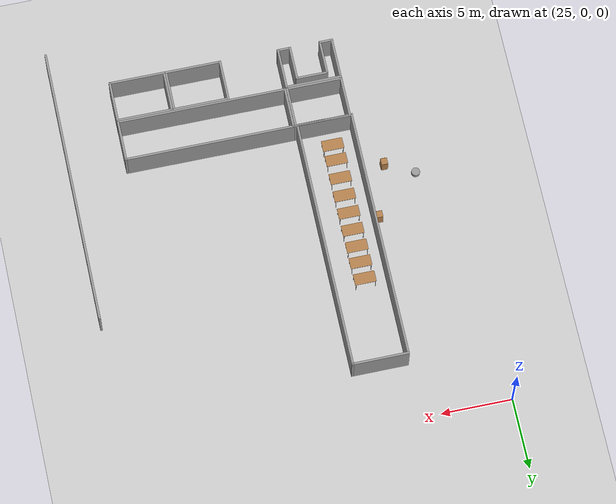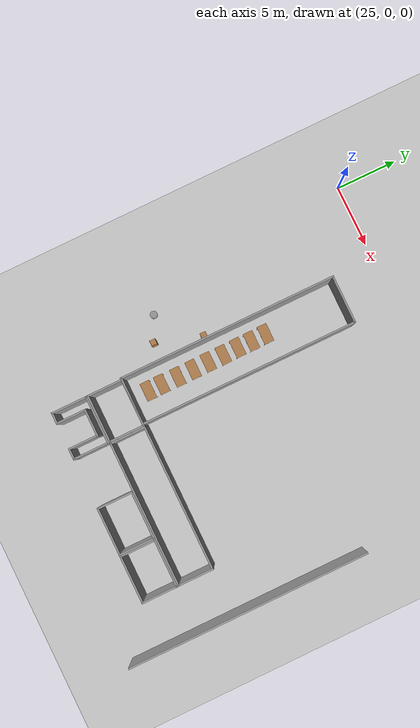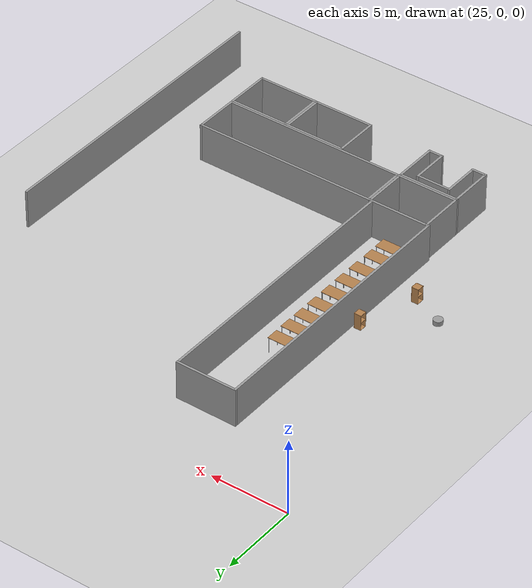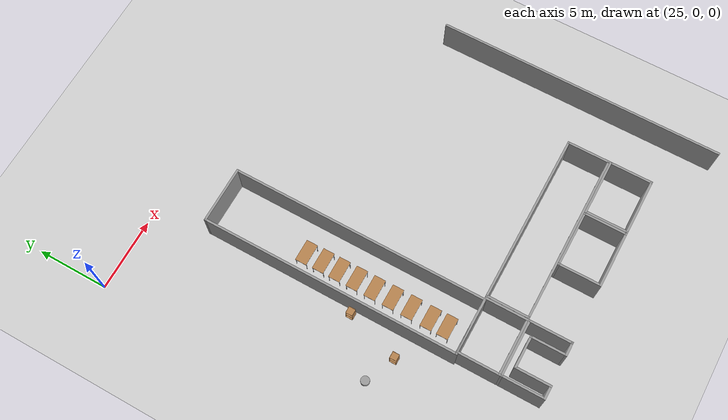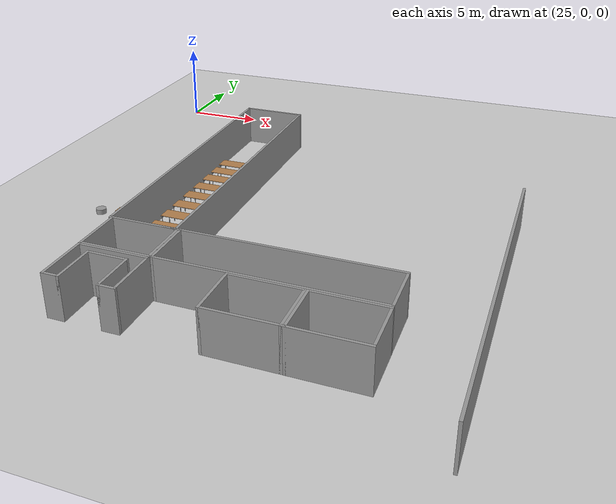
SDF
<sdf version="1.6">
 <world name="default">
  <model name="ground_plane">
   <static>1</static>
   <link name="link">
    <collision name="collision">
     <geometry><plane><normal>0 0 1</normal><size>105 105</size></plane></geometry>
     <surface>
      <contact><collide_bitmask>65535</collide_bitmask></contact>
      <friction><ode><mu>100</mu><mu2>50</mu2></ode></friction>
     </surface>
    </collision>
    <visual name="visual">
     <cast_shadows>0</cast_shadows>
     <geometry><plane><normal>0 0 1</normal><size>105 105</size></plane></geometry>
     <material>
      <script><uri>file://media/materials/scripts/gazebo.material</uri><name>Gazebo/Grey</name></script>
     </material>
    </visual>
   </link>
  </model>
  <model name="wall_v20m_3">
   <pose>51.4198 -20.719 0 0 -0 0</pose>
   <link name="Wall_35">
    <collision name="Wall_35_Collision">
     <geometry><box><size>20 0.15 2.5</size></box></geometry>
     <pose>0 0 1.25 0 -0 0</pose>
    </collision>
    <visual name="Wall_35_Visual">
     <pose>0 0 1.25 0 -0 0</pose>
     <geometry><box><size>20 0.15 2.5</size></box></geometry>
     <material>
      <script><uri>file://media/materials/scripts/gazebo.material</uri><name>Gazebo/Grey</name></script>
      <ambient>1 1 1 1</ambient>
     </material>
     <meta><layer>0</layer></meta>
    </visual>
    <pose>0 -0 0 0 -0 -1.5708</pose>
   </link>
   <static>1</static>
  </model>
  <model name="base3x4_25">
   <pose>33.5003 -23.2296 0 0 -0 0</pose>
   <link name="Wall_18">
    <collision name="Wall_18_Collision">
     <geometry><box><size>3 0.15 2.5</size></box></geometry>
     <pose>0 0 1.25 0 -0 0</pose>
    </collision>
    <visual name="Wall_18_Visual">
     <pose>0 0 1.25 0 -0 0</pose>
     <geometry><box><size>3 0.15 2.5</size></box></geometry>
     <material>
      <script><uri>file://media/materials/scripts/gazebo.material</uri><name>Gazebo/Grey</name></script>
      <ambient>1 1 1 1</ambient>
     </material>
     <meta><layer>0</layer></meta>
    </visual>
    <pose>-1.925 -0 0 0 -0 -1.5708</pose>
   </link>
   <link name="Wall_19">
    <collision name="Wall_19_Collision">
     <geometry><box><size>4 0.15 2.5</size></box></geometry>
     <pose>0 0 1.25 0 -0 0</pose>
    </collision>
    <visual name="Wall_19_Visual">
     <pose>0 0 1.25 0 -0 0</pose>
     <geometry><box><size>4 0.15 2.5</size></box></geometry>
     <material>
      <script><uri>file://media/materials/scripts/gazebo.material</uri><name>Gazebo/Grey</name></script>
      <ambient>1 1 1 1</ambient>
     </material>
     <meta><layer>0</layer></meta>
    </visual>
    <pose>-0 -1.425 0 0 -0 0</pose>
   </link>
   <link name="Wall_20">
    <collision name="Wall_20_Collision">
     <geometry><box><size>3 0.15 2.5</size></box></geometry>
     <pose>0 0 1.25 0 -0 0</pose>
    </collision>
    <visual name="Wall_20_Visual">
     <pose>0 0 1.25 0 -0 0</pose>
     <geometry><box><size>3 0.15 2.5</size></box></geometry>
     <material>
      <script><uri>file://media/materials/scripts/gazebo.material</uri><name>Gazebo/Grey</name></script>
      <ambient>1 1 1 1</ambient>
     </material>
     <meta><layer>0</layer></meta>
    </visual>
    <pose>1.925 -0 0 0 -0 1.5708</pose>
   </link>
   <link name="Wall_21">
    <collision name="Wall_21_Collision">
     <geometry><box><size>4 0.15 2.5</size></box></geometry>
     <pose>0 0 1.25 0 -0 0</pose>
    </collision>
    <visual name="Wall_21_Visual">
     <pose>0 0 1.25 0 -0 0</pose>
     <geometry><box><size>4 0.15 2.5</size></box></geometry>
     <material>
      <script><uri>file://media/materials/scripts/gazebo.material</uri><name>Gazebo/Grey</name></script>
      <ambient>1 1 1 1</ambient>
     </material>
     <meta><layer>0</layer></meta>
    </visual>
    <pose>-0 1.425 0 0 -0 3.14159</pose>
   </link>
   <static>1</static>
  </model>
  <model name="base3x12">
   <pose>41.5026 -23.2294 0 0 -0 0</pose>
   <link name="Wall_0">
    <collision name="Wall_0_Collision">
     <geometry><box><size>3 0.15 2.5</size></box></geometry>
     <pose>0 0 1.25 0 -0 0</pose>
    </collision>
    <visual name="Wall_0_Visual">
     <pose>0 0 1.25 0 -0 0</pose>
     <geometry><box><size>3 0.15 2.5</size></box></geometry>
     <material>
      <script><uri>file://media/materials/scripts/gazebo.material</uri><name>Gazebo/Grey</name></script>
      <ambient>1 1 1 1</ambient>
     </material>
     <meta><layer>0</layer></meta>
    </visual>
    <pose>-5.925 0 0 0 -0 -1.5708</pose>
   </link>
   <link name="Wall_1">
    <collision name="Wall_1_Collision">
     <geometry><box><size>12 0.15 2.5</size></box></geometry>
     <pose>0 0 1.25 0 -0 0</pose>
    </collision>
    <visual name="Wall_1_Visual">
     <pose>0 0 1.25 0 -0 0</pose>
     <geometry><box><size>12 0.15 2.5</size></box></geometry>
     <material>
      <script><uri>file://media/materials/scripts/gazebo.material</uri><name>Gazebo/Grey</name></script>
      <ambient>1 1 1 1</ambient>
     </material>
     <meta><layer>0</layer></meta>
    </visual>
    <pose>0 -1.425 0 0 -0 0</pose>
   </link>
   <link name="Wall_2">
    <collision name="Wall_2_Collision">
     <geometry><box><size>3 0.15 2.5</size></box></geometry>
     <pose>0 0 1.25 0 -0 0</pose>
    </collision>
    <visual name="Wall_2_Visual">
     <pose>0 0 1.25 0 -0 0</pose>
     <geometry><box><size>3 0.15 2.5</size></box></geometry>
     <material>
      <script><uri>file://media/materials/scripts/gazebo.material</uri><name>Gazebo/Grey</name></script>
      <ambient>1 1 1 1</ambient>
     </material>
     <meta><layer>0</layer></meta>
    </visual>
    <pose>5.925 0 0 0 -0 1.5708</pose>
   </link>
   <link name="Wall_3">
    <collision name="Wall_3_Collision">
     <geometry><box><size>12 0.15 2.5</size></box></geometry>
     <pose>0 0 1.25 0 -0 0</pose>
    </collision>
    <visual name="Wall_3_Visual">
     <pose>0 0 1.25 0 -0 0</pose>
     <geometry><box><size>12 0.15 2.5</size></box></geometry>
     <material>
      <script><uri>file://media/materials/scripts/gazebo.material</uri><name>Gazebo/Grey</name></script>
      <ambient>1 1 1 1</ambient>
     </material>
     <meta><layer>0</layer></meta>
    </visual>
    <pose>0 1.425 0 0 -0 3.14159</pose>
   </link>
   <static>1</static>
  </model>
  <model name="base18x4_5">
   <pose>33.3746 -12.8976 0 0 -0 0</pose>
   <link name="Wall_6">
    <collision name="Wall_6_Collision">
     <geometry><box><size>18 0.15 2.5</size></box></geometry>
     <pose>0 0 1.25 0 -0 0</pose>
    </collision>
    <visual name="Wall_6_Visual">
     <pose>0 0 1.25 0 -0 0</pose>
     <geometry><box><size>18 0.15 2.5</size></box></geometry>
     <material>
      <script><uri>file://media/materials/scripts/gazebo.material</uri><name>Gazebo/Grey</name></script>
      <ambient>1 1 1 1</ambient>
     </material>
     <meta><layer>0</layer></meta>
    </visual>
    <pose>-1.925 0 0 0 -0 -1.5708</pose>
   </link>
   <link name="Wall_7">
    <collision name="Wall_7_Collision">
     <geometry><box><size>4 0.15 2.5</size></box></geometry>
     <pose>0 0 1.25 0 -0 0</pose>
    </collision>
    <visual name="Wall_7_Visual">
     <pose>0 0 1.25 0 -0 0</pose>
     <geometry><box><size>4 0.15 2.5</size></box></geometry>
     <material>
      <script><uri>file://media/materials/scripts/gazebo.material</uri><name>Gazebo/Grey</name></script>
      <ambient>1 1 1 1</ambient>
     </material>
     <meta><layer>0</layer></meta>
    </visual>
    <pose>0 -8.925 0 0 -0 0</pose>
   </link>
   <link name="Wall_8">
    <collision name="Wall_8_Collision">
     <geometry><box><size>18 0.15 2.5</size></box></geometry>
     <pose>0 0 1.25 0 -0 0</pose>
    </collision>
    <visual name="Wall_8_Visual">
     <pose>0 0 1.25 0 -0 0</pose>
     <geometry><box><size>18 0.15 2.5</size></box></geometry>
     <material>
      <script><uri>file://media/materials/scripts/gazebo.material</uri><name>Gazebo/Grey</name></script>
      <ambient>1 1 1 1</ambient>
     </material>
     <meta><layer>0</layer></meta>
    </visual>
    <pose>1.925 0 0 0 -0 1.5708</pose>
   </link>
   <link name="Wall_9">
    <collision name="Wall_9_Collision">
     <geometry><box><size>4 0.15 2.5</size></box></geometry>
     <pose>0 0 1.25 0 -0 0</pose>
    </collision>
    <visual name="Wall_9_Visual">
     <pose>0 0 1.25 0 -0 0</pose>
     <geometry><box><size>4 0.15 2.5</size></box></geometry>
     <material>
      <script><uri>file://media/materials/scripts/gazebo.material</uri><name>Gazebo/Grey</name></script>
      <ambient>1 1 1 1</ambient>
     </material>
     <meta><layer>0</layer></meta>
    </visual>
    <pose>0 8.925 0 0 -0 3.14159</pose>
   </link>
   <static>1</static>
  </model>
  <model name="table">
   <static>1</static>
   <link name="link">
    <collision name="surface">
     <pose>0 0 1 0 -0 0</pose>
     <geometry><box><size>1.5 0.8 0.03</size></box></geometry>
     <surface><friction><ode><mu>0.6</mu><mu2>0.6</mu2></ode></friction></surface>
    </collision>
    <visual name="visual1">
     <pose>0 0 1 0 -0 0</pose>
     <geometry><box><size>1.5 0.8 0.03</size></box></geometry>
     <material>
      <script><uri>file://media/materials/scripts/gazebo.material</uri><name>Gazebo/Wood</name></script>
     </material>
    </visual>
    <collision name="front_left_leg">
     <pose>0.68 0.38 0.5 0 -0 0</pose>
     <geometry><cylinder><radius>0.02</radius><length>1</length></cylinder></geometry>
    </collision>
    <visual name="front_left_leg">
     <pose>0.68 0.38 0.5 0 -0 0</pose>
     <geometry><cylinder><radius>0.02</radius><length>1</length></cylinder></geometry>
     <material>
      <script><uri>file://media/materials/scripts/gazebo.material</uri><name>Gazebo/Grey</name></script>
     </material>
    </visual>
    <collision name="front_right_leg">
     <pose>0.68 -0.38 0.5 0 -0 0</pose>
     <geometry><cylinder><radius>0.02</radius><length>1</length></cylinder></geometry>
    </collision>
    <visual name="front_right_leg">
     <pose>0.68 -0.38 0.5 0 -0 0</pose>
     <geometry><cylinder><radius>0.02</radius><length>1</length></cylinder></geometry>
     <material>
      <script><uri>file://media/materials/scripts/gazebo.material</uri><name>Gazebo/Grey</name></script>
     </material>
    </visual>
    <collision name="back_right_leg">
     <pose>-0.68 -0.38 0.5 0 -0 0</pose>
     <geometry><cylinder><radius>0.02</radius><length>1</length></cylinder></geometry>
    </collision>
    <visual name="back_right_leg">
     <pose>-0.68 -0.38 0.5 0 -0 0</pose>
     <geometry><cylinder><radius>0.02</radius><length>1</length></cylinder></geometry>
     <material>
      <script><uri>file://media/materials/scripts/gazebo.material</uri><name>Gazebo/Grey</name></script>
     </material>
    </visual>
    <collision name="back_left_leg">
     <pose>-0.68 0.38 0.5 0 -0 0</pose>
     <geometry><cylinder><radius>0.02</radius><length>1</length></cylinder></geometry>
    </collision>
    <visual name="back_left_leg">
     <pose>-0.68 0.38 0.5 0 -0 0</pose>
     <geometry><cylinder><radius>0.02</radius><length>1</length></cylinder></geometry>
     <material>
      <script><uri>file://media/materials/scripts/gazebo.material</uri><name>Gazebo/Grey</name></script>
     </material>
    </visual>
   </link>
   <pose>33.0718 -20.4788 0 0 -0 0</pose>
  </model>
  <model name="table_0">
   <static>1</static>
   <link name="link">
    <collision name="surface">
     <pose>0 0 1 0 -0 0</pose>
     <geometry><box><size>1.5 0.8 0.03</size></box></geometry>
     <surface><friction><ode><mu>0.6</mu><mu2>0.6</mu2></ode></friction></surface>
    </collision>
    <visual name="visual1">
     <pose>0 0 1 0 -0 0</pose>
     <geometry><box><size>1.5 0.8 0.03</size></box></geometry>
     <material>
      <script><uri>file://media/materials/scripts/gazebo.material</uri><name>Gazebo/Wood</name></script>
     </material>
    </visual>
    <collision name="front_left_leg">
     <pose>0.68 0.38 0.5 0 -0 0</pose>
     <geometry><cylinder><radius>0.02</radius><length>1</length></cylinder></geometry>
    </collision>
    <visual name="front_left_leg">
     <pose>0.68 0.38 0.5 0 -0 0</pose>
     <geometry><cylinder><radius>0.02</radius><length>1</length></cylinder></geometry>
     <material>
      <script><uri>file://media/materials/scripts/gazebo.material</uri><name>Gazebo/Grey</name></script>
     </material>
    </visual>
    <collision name="front_right_leg">
     <pose>0.68 -0.38 0.5 0 -0 0</pose>
     <geometry><cylinder><radius>0.02</radius><length>1</length></cylinder></geometry>
    </collision>
    <visual name="front_right_leg">
     <pose>0.68 -0.38 0.5 0 -0 0</pose>
     <geometry><cylinder><radius>0.02</radius><length>1</length></cylinder></geometry>
     <material>
      <script><uri>file://media/materials/scripts/gazebo.material</uri><name>Gazebo/Grey</name></script>
     </material>
    </visual>
    <collision name="back_right_leg">
     <pose>-0.68 -0.38 0.5 0 -0 0</pose>
     <geometry><cylinder><radius>0.02</radius><length>1</length></cylinder></geometry>
    </collision>
    <visual name="back_right_leg">
     <pose>-0.68 -0.38 0.5 0 -0 0</pose>
     <geometry><cylinder><radius>0.02</radius><length>1</length></cylinder></geometry>
     <material>
      <script><uri>file://media/materials/scripts/gazebo.material</uri><name>Gazebo/Grey</name></script>
     </material>
    </visual>
    <collision name="back_left_leg">
     <pose>-0.68 0.38 0.5 0 -0 0</pose>
     <geometry><cylinder><radius>0.02</radius><length>1</length></cylinder></geometry>
    </collision>
    <visual name="back_left_leg">
     <pose>-0.68 0.38 0.5 0 -0 0</pose>
     <geometry><cylinder><radius>0.02</radius><length>1</length></cylinder></geometry>
     <material>
      <script><uri>file://media/materials/scripts/gazebo.material</uri><name>Gazebo/Grey</name></script>
     </material>
    </visual>
   </link>
   <pose>33.0586 -19.3271 0 0 -0 0</pose>
  </model>
  <model name="table_1">
   <static>1</static>
   <link name="link">
    <collision name="surface">
     <pose>0 0 1 0 -0 0</pose>
     <geometry><box><size>1.5 0.8 0.03</size></box></geometry>
     <surface><friction><ode><mu>0.6</mu><mu2>0.6</mu2></ode></friction></surface>
    </collision>
    <visual name="visual1">
     <pose>0 0 1 0 -0 0</pose>
     <geometry><box><size>1.5 0.8 0.03</size></box></geometry>
     <material>
      <script><uri>file://media/materials/scripts/gazebo.material</uri><name>Gazebo/Wood</name></script>
     </material>
    </visual>
    <collision name="front_left_leg">
     <pose>0.68 0.38 0.5 0 -0 0</pose>
     <geometry><cylinder><radius>0.02</radius><length>1</length></cylinder></geometry>
    </collision>
    <visual name="front_left_leg">
     <pose>0.68 0.38 0.5 0 -0 0</pose>
     <geometry><cylinder><radius>0.02</radius><length>1</length></cylinder></geometry>
     <material>
      <script><uri>file://media/materials/scripts/gazebo.material</uri><name>Gazebo/Grey</name></script>
     </material>
    </visual>
    <collision name="front_right_leg">
     <pose>0.68 -0.38 0.5 0 -0 0</pose>
     <geometry><cylinder><radius>0.02</radius><length>1</length></cylinder></geometry>
    </collision>
    <visual name="front_right_leg">
     <pose>0.68 -0.38 0.5 0 -0 0</pose>
     <geometry><cylinder><radius>0.02</radius><length>1</length></cylinder></geometry>
     <material>
      <script><uri>file://media/materials/scripts/gazebo.material</uri><name>Gazebo/Grey</name></script>
     </material>
    </visual>
    <collision name="back_right_leg">
     <pose>-0.68 -0.38 0.5 0 -0 0</pose>
     <geometry><cylinder><radius>0.02</radius><length>1</length></cylinder></geometry>
    </collision>
    <visual name="back_right_leg">
     <pose>-0.68 -0.38 0.5 0 -0 0</pose>
     <geometry><cylinder><radius>0.02</radius><length>1</length></cylinder></geometry>
     <material>
      <script><uri>file://media/materials/scripts/gazebo.material</uri><name>Gazebo/Grey</name></script>
     </material>
    </visual>
    <collision name="back_left_leg">
     <pose>-0.68 0.38 0.5 0 -0 0</pose>
     <geometry><cylinder><radius>0.02</radius><length>1</length></cylinder></geometry>
    </collision>
    <visual name="back_left_leg">
     <pose>-0.68 0.38 0.5 0 -0 0</pose>
     <geometry><cylinder><radius>0.02</radius><length>1</length></cylinder></geometry>
     <material>
      <script><uri>file://media/materials/scripts/gazebo.material</uri><name>Gazebo/Grey</name></script>
     </material>
    </visual>
   </link>
   <pose>33.0783 -17.9476 0 0 -0 0</pose>
  </model>
  <model name="table_2">
   <static>1</static>
   <link name="link">
    <collision name="surface">
     <pose>0 0 1 0 -0 0</pose>
     <geometry><box><size>1.5 0.8 0.03</size></box></geometry>
     <surface><friction><ode><mu>0.6</mu><mu2>0.6</mu2></ode></friction></surface>
    </collision>
    <visual name="visual1">
     <pose>0 0 1 0 -0 0</pose>
     <geometry><box><size>1.5 0.8 0.03</size></box></geometry>
     <material>
      <script><uri>file://media/materials/scripts/gazebo.material</uri><name>Gazebo/Wood</name></script>
     </material>
    </visual>
    <collision name="front_left_leg">
     <pose>0.68 0.38 0.5 0 -0 0</pose>
     <geometry><cylinder><radius>0.02</radius><length>1</length></cylinder></geometry>
    </collision>
    <visual name="front_left_leg">
     <pose>0.68 0.38 0.5 0 -0 0</pose>
     <geometry><cylinder><radius>0.02</radius><length>1</length></cylinder></geometry>
     <material>
      <script><uri>file://media/materials/scripts/gazebo.material</uri><name>Gazebo/Grey</name></script>
     </material>
    </visual>
    <collision name="front_right_leg">
     <pose>0.68 -0.38 0.5 0 -0 0</pose>
     <geometry><cylinder><radius>0.02</radius><length>1</length></cylinder></geometry>
    </collision>
    <visual name="front_right_leg">
     <pose>0.68 -0.38 0.5 0 -0 0</pose>
     <geometry><cylinder><radius>0.02</radius><length>1</length></cylinder></geometry>
     <material>
      <script><uri>file://media/materials/scripts/gazebo.material</uri><name>Gazebo/Grey</name></script>
     </material>
    </visual>
    <collision name="back_right_leg">
     <pose>-0.68 -0.38 0.5 0 -0 0</pose>
     <geometry><cylinder><radius>0.02</radius><length>1</length></cylinder></geometry>
    </collision>
    <visual name="back_right_leg">
     <pose>-0.68 -0.38 0.5 0 -0 0</pose>
     <geometry><cylinder><radius>0.02</radius><length>1</length></cylinder></geometry>
     <material>
      <script><uri>file://media/materials/scripts/gazebo.material</uri><name>Gazebo/Grey</name></script>
     </material>
    </visual>
    <collision name="back_left_leg">
     <pose>-0.68 0.38 0.5 0 -0 0</pose>
     <geometry><cylinder><radius>0.02</radius><length>1</length></cylinder></geometry>
    </collision>
    <visual name="back_left_leg">
     <pose>-0.68 0.38 0.5 0 -0 0</pose>
     <geometry><cylinder><radius>0.02</radius><length>1</length></cylinder></geometry>
     <material>
      <script><uri>file://media/materials/scripts/gazebo.material</uri><name>Gazebo/Grey</name></script>
     </material>
    </visual>
   </link>
   <pose>33.0811 -16.621 0 0 -0 0</pose>
  </model>
  <model name="table_3">
   <static>1</static>
   <link name="link">
    <collision name="surface">
     <pose>0 0 1 0 -0 0</pose>
     <geometry><box><size>1.5 0.8 0.03</size></box></geometry>
     <surface><friction><ode><mu>0.6</mu><mu2>0.6</mu2></ode></friction></surface>
    </collision>
    <visual name="visual1">
     <pose>0 0 1 0 -0 0</pose>
     <geometry><box><size>1.5 0.8 0.03</size></box></geometry>
     <material>
      <script><uri>file://media/materials/scripts/gazebo.material</uri><name>Gazebo/Wood</name></script>
     </material>
    </visual>
    <collision name="front_left_leg">
     <pose>0.68 0.38 0.5 0 -0 0</pose>
     <geometry><cylinder><radius>0.02</radius><length>1</length></cylinder></geometry>
    </collision>
    <visual name="front_left_leg">
     <pose>0.68 0.38 0.5 0 -0 0</pose>
     <geometry><cylinder><radius>0.02</radius><length>1</length></cylinder></geometry>
     <material>
      <script><uri>file://media/materials/scripts/gazebo.material</uri><name>Gazebo/Grey</name></script>
     </material>
    </visual>
    <collision name="front_right_leg">
     <pose>0.68 -0.38 0.5 0 -0 0</pose>
     <geometry><cylinder><radius>0.02</radius><length>1</length></cylinder></geometry>
    </collision>
    <visual name="front_right_leg">
     <pose>0.68 -0.38 0.5 0 -0 0</pose>
     <geometry><cylinder><radius>0.02</radius><length>1</length></cylinder></geometry>
     <material>
      <script><uri>file://media/materials/scripts/gazebo.material</uri><name>Gazebo/Grey</name></script>
     </material>
    </visual>
    <collision name="back_right_leg">
     <pose>-0.68 -0.38 0.5 0 -0 0</pose>
     <geometry><cylinder><radius>0.02</radius><length>1</length></cylinder></geometry>
    </collision>
    <visual name="back_right_leg">
     <pose>-0.68 -0.38 0.5 0 -0 0</pose>
     <geometry><cylinder><radius>0.02</radius><length>1</length></cylinder></geometry>
     <material>
      <script><uri>file://media/materials/scripts/gazebo.material</uri><name>Gazebo/Grey</name></script>
     </material>
    </visual>
    <collision name="back_left_leg">
     <pose>-0.68 0.38 0.5 0 -0 0</pose>
     <geometry><cylinder><radius>0.02</radius><length>1</length></cylinder></geometry>
    </collision>
    <visual name="back_left_leg">
     <pose>-0.68 0.38 0.5 0 -0 0</pose>
     <geometry><cylinder><radius>0.02</radius><length>1</length></cylinder></geometry>
     <material>
      <script><uri>file://media/materials/scripts/gazebo.material</uri><name>Gazebo/Grey</name></script>
     </material>
    </visual>
   </link>
   <pose>33.0661 -15.3115 0 0 -0 0</pose>
  </model>
  <model name="table_4">
   <static>1</static>
   <link name="link">
    <collision name="surface">
     <pose>0 0 1 0 -0 0</pose>
     <geometry><box><size>1.5 0.8 0.03</size></box></geometry>
     <surface><friction><ode><mu>0.6</mu><mu2>0.6</mu2></ode></friction></surface>
    </collision>
    <visual name="visual1">
     <pose>0 0 1 0 -0 0</pose>
     <geometry><box><size>1.5 0.8 0.03</size></box></geometry>
     <material>
      <script><uri>file://media/materials/scripts/gazebo.material</uri><name>Gazebo/Wood</name></script>
     </material>
    </visual>
    <collision name="front_left_leg">
     <pose>0.68 0.38 0.5 0 -0 0</pose>
     <geometry><cylinder><radius>0.02</radius><length>1</length></cylinder></geometry>
    </collision>
    <visual name="front_left_leg">
     <pose>0.68 0.38 0.5 0 -0 0</pose>
     <geometry><cylinder><radius>0.02</radius><length>1</length></cylinder></geometry>
     <material>
      <script><uri>file://media/materials/scripts/gazebo.material</uri><name>Gazebo/Grey</name></script>
     </material>
    </visual>
    <collision name="front_right_leg">
     <pose>0.68 -0.38 0.5 0 -0 0</pose>
     <geometry><cylinder><radius>0.02</radius><length>1</length></cylinder></geometry>
    </collision>
    <visual name="front_right_leg">
     <pose>0.68 -0.38 0.5 0 -0 0</pose>
     <geometry><cylinder><radius>0.02</radius><length>1</length></cylinder></geometry>
     <material>
      <script><uri>file://media/materials/scripts/gazebo.material</uri><name>Gazebo/Grey</name></script>
     </material>
    </visual>
    <collision name="back_right_leg">
     <pose>-0.68 -0.38 0.5 0 -0 0</pose>
     <geometry><cylinder><radius>0.02</radius><length>1</length></cylinder></geometry>
    </collision>
    <visual name="back_right_leg">
     <pose>-0.68 -0.38 0.5 0 -0 0</pose>
     <geometry><cylinder><radius>0.02</radius><length>1</length></cylinder></geometry>
     <material>
      <script><uri>file://media/materials/scripts/gazebo.material</uri><name>Gazebo/Grey</name></script>
     </material>
    </visual>
    <collision name="back_left_leg">
     <pose>-0.68 0.38 0.5 0 -0 0</pose>
     <geometry><cylinder><radius>0.02</radius><length>1</length></cylinder></geometry>
    </collision>
    <visual name="back_left_leg">
     <pose>-0.68 0.38 0.5 0 -0 0</pose>
     <geometry><cylinder><radius>0.02</radius><length>1</length></cylinder></geometry>
     <material>
      <script><uri>file://media/materials/scripts/gazebo.material</uri><name>Gazebo/Grey</name></script>
     </material>
    </visual>
   </link>
   <pose>33.068 -14.0197 0 0 -0 0</pose>
  </model>
  <model name="table_5">
   <static>1</static>
   <link name="link">
    <collision name="surface">
     <pose>0 0 1 0 -0 0</pose>
     <geometry><box><size>1.5 0.8 0.03</size></box></geometry>
     <surface><friction><ode><mu>0.6</mu><mu2>0.6</mu2></ode></friction></surface>
    </collision>
    <visual name="visual1">
     <pose>0 0 1 0 -0 0</pose>
     <geometry><box><size>1.5 0.8 0.03</size></box></geometry>
     <material>
      <script><uri>file://media/materials/scripts/gazebo.material</uri><name>Gazebo/Wood</name></script>
     </material>
    </visual>
    <collision name="front_left_leg">
     <pose>0.68 0.38 0.5 0 -0 0</pose>
     <geometry><cylinder><radius>0.02</radius><length>1</length></cylinder></geometry>
    </collision>
    <visual name="front_left_leg">
     <pose>0.68 0.38 0.5 0 -0 0</pose>
     <geometry><cylinder><radius>0.02</radius><length>1</length></cylinder></geometry>
     <material>
      <script><uri>file://media/materials/scripts/gazebo.material</uri><name>Gazebo/Grey</name></script>
     </material>
    </visual>
    <collision name="front_right_leg">
     <pose>0.68 -0.38 0.5 0 -0 0</pose>
     <geometry><cylinder><radius>0.02</radius><length>1</length></cylinder></geometry>
    </collision>
    <visual name="front_right_leg">
     <pose>0.68 -0.38 0.5 0 -0 0</pose>
     <geometry><cylinder><radius>0.02</radius><length>1</length></cylinder></geometry>
     <material>
      <script><uri>file://media/materials/scripts/gazebo.material</uri><name>Gazebo/Grey</name></script>
     </material>
    </visual>
    <collision name="back_right_leg">
     <pose>-0.68 -0.38 0.5 0 -0 0</pose>
     <geometry><cylinder><radius>0.02</radius><length>1</length></cylinder></geometry>
    </collision>
    <visual name="back_right_leg">
     <pose>-0.68 -0.38 0.5 0 -0 0</pose>
     <geometry><cylinder><radius>0.02</radius><length>1</length></cylinder></geometry>
     <material>
      <script><uri>file://media/materials/scripts/gazebo.material</uri><name>Gazebo/Grey</name></script>
     </material>
    </visual>
    <collision name="back_left_leg">
     <pose>-0.68 0.38 0.5 0 -0 0</pose>
     <geometry><cylinder><radius>0.02</radius><length>1</length></cylinder></geometry>
    </collision>
    <visual name="back_left_leg">
     <pose>-0.68 0.38 0.5 0 -0 0</pose>
     <geometry><cylinder><radius>0.02</radius><length>1</length></cylinder></geometry>
     <material>
      <script><uri>file://media/materials/scripts/gazebo.material</uri><name>Gazebo/Grey</name></script>
     </material>
    </visual>
   </link>
   <pose>33.0548 -12.7631 0 0 -0 0</pose>
  </model>
  <model name="table_6">
   <static>1</static>
   <link name="link">
    <collision name="surface">
     <pose>0 0 1 0 -0 0</pose>
     <geometry><box><size>1.5 0.8 0.03</size></box></geometry>
     <surface><friction><ode><mu>0.6</mu><mu2>0.6</mu2></ode></friction></surface>
    </collision>
    <visual name="visual1">
     <pose>0 0 1 0 -0 0</pose>
     <geometry><box><size>1.5 0.8 0.03</size></box></geometry>
     <material>
      <script><uri>file://media/materials/scripts/gazebo.material</uri><name>Gazebo/Wood</name></script>
     </material>
    </visual>
    <collision name="front_left_leg">
     <pose>0.68 0.38 0.5 0 -0 0</pose>
     <geometry><cylinder><radius>0.02</radius><length>1</length></cylinder></geometry>
    </collision>
    <visual name="front_left_leg">
     <pose>0.68 0.38 0.5 0 -0 0</pose>
     <geometry><cylinder><radius>0.02</radius><length>1</length></cylinder></geometry>
     <material>
      <script><uri>file://media/materials/scripts/gazebo.material</uri><name>Gazebo/Grey</name></script>
     </material>
    </visual>
    <collision name="front_right_leg">
     <pose>0.68 -0.38 0.5 0 -0 0</pose>
     <geometry><cylinder><radius>0.02</radius><length>1</length></cylinder></geometry>
    </collision>
    <visual name="front_right_leg">
     <pose>0.68 -0.38 0.5 0 -0 0</pose>
     <geometry><cylinder><radius>0.02</radius><length>1</length></cylinder></geometry>
     <material>
      <script><uri>file://media/materials/scripts/gazebo.material</uri><name>Gazebo/Grey</name></script>
     </material>
    </visual>
    <collision name="back_right_leg">
     <pose>-0.68 -0.38 0.5 0 -0 0</pose>
     <geometry><cylinder><radius>0.02</radius><length>1</length></cylinder></geometry>
    </collision>
    <visual name="back_right_leg">
     <pose>-0.68 -0.38 0.5 0 -0 0</pose>
     <geometry><cylinder><radius>0.02</radius><length>1</length></cylinder></geometry>
     <material>
      <script><uri>file://media/materials/scripts/gazebo.material</uri><name>Gazebo/Grey</name></script>
     </material>
    </visual>
    <collision name="back_left_leg">
     <pose>-0.68 0.38 0.5 0 -0 0</pose>
     <geometry><cylinder><radius>0.02</radius><length>1</length></cylinder></geometry>
    </collision>
    <visual name="back_left_leg">
     <pose>-0.68 0.38 0.5 0 -0 0</pose>
     <geometry><cylinder><radius>0.02</radius><length>1</length></cylinder></geometry>
     <material>
      <script><uri>file://media/materials/scripts/gazebo.material</uri><name>Gazebo/Grey</name></script>
     </material>
    </visual>
   </link>
   <pose>33.0586 -11.5759 0 0 -0 0</pose>
  </model>
  <model name="table_7">
   <static>1</static>
   <link name="link">
    <collision name="surface">
     <pose>0 0 1 0 -0 0</pose>
     <geometry><box><size>1.5 0.8 0.03</size></box></geometry>
     <surface><friction><ode><mu>0.6</mu><mu2>0.6</mu2></ode></friction></surface>
    </collision>
    <visual name="visual1">
     <pose>0 0 1 0 -0 0</pose>
     <geometry><box><size>1.5 0.8 0.03</size></box></geometry>
     <material>
      <script><uri>file://media/materials/scripts/gazebo.material</uri><name>Gazebo/Wood</name></script>
     </material>
    </visual>
    <collision name="front_left_leg">
     <pose>0.68 0.38 0.5 0 -0 0</pose>
     <geometry><cylinder><radius>0.02</radius><length>1</length></cylinder></geometry>
    </collision>
    <visual name="front_left_leg">
     <pose>0.68 0.38 0.5 0 -0 0</pose>
     <geometry><cylinder><radius>0.02</radius><length>1</length></cylinder></geometry>
     <material>
      <script><uri>file://media/materials/scripts/gazebo.material</uri><name>Gazebo/Grey</name></script>
     </material>
    </visual>
    <collision name="front_right_leg">
     <pose>0.68 -0.38 0.5 0 -0 0</pose>
     <geometry><cylinder><radius>0.02</radius><length>1</length></cylinder></geometry>
    </collision>
    <visual name="front_right_leg">
     <pose>0.68 -0.38 0.5 0 -0 0</pose>
     <geometry><cylinder><radius>0.02</radius><length>1</length></cylinder></geometry>
     <material>
      <script><uri>file://media/materials/scripts/gazebo.material</uri><name>Gazebo/Grey</name></script>
     </material>
    </visual>
    <collision name="back_right_leg">
     <pose>-0.68 -0.38 0.5 0 -0 0</pose>
     <geometry><cylinder><radius>0.02</radius><length>1</length></cylinder></geometry>
    </collision>
    <visual name="back_right_leg">
     <pose>-0.68 -0.38 0.5 0 -0 0</pose>
     <geometry><cylinder><radius>0.02</radius><length>1</length></cylinder></geometry>
     <material>
      <script><uri>file://media/materials/scripts/gazebo.material</uri><name>Gazebo/Grey</name></script>
     </material>
    </visual>
    <collision name="back_left_leg">
     <pose>-0.68 0.38 0.5 0 -0 0</pose>
     <geometry><cylinder><radius>0.02</radius><length>1</length></cylinder></geometry>
    </collision>
    <visual name="back_left_leg">
     <pose>-0.68 0.38 0.5 0 -0 0</pose>
     <geometry><cylinder><radius>0.02</radius><length>1</length></cylinder></geometry>
     <material>
      <script><uri>file://media/materials/scripts/gazebo.material</uri><name>Gazebo/Grey</name></script>
     </material>
    </visual>
   </link>
   <pose>33.0266 -10.3543 0 0 -0 0</pose>
  </model>
  <model name="base3x4_9">
   <pose>45.5083 -26.2198 0 0 -0 0</pose>
   <link name="Wall_18">
    <collision name="Wall_18_Collision">
     <geometry><box><size>3 0.15 2.5</size></box></geometry>
     <pose>0 0 1.25 0 -0 0</pose>
    </collision>
    <visual name="Wall_18_Visual">
     <pose>0 0 1.25 0 -0 0</pose>
     <geometry><box><size>3 0.15 2.5</size></box></geometry>
     <material>
      <script><uri>file://media/materials/scripts/gazebo.material</uri><name>Gazebo/Grey</name></script>
      <ambient>1 1 1 1</ambient>
     </material>
     <meta><layer>0</layer></meta>
    </visual>
    <pose>-1.925 -0 0 0 -0 -1.5708</pose>
   </link>
   <link name="Wall_19">
    <collision name="Wall_19_Collision">
     <geometry><box><size>4 0.15 2.5</size></box></geometry>
     <pose>0 0 1.25 0 -0 0</pose>
    </collision>
    <visual name="Wall_19_Visual">
     <pose>0 0 1.25 0 -0 0</pose>
     <geometry><box><size>4 0.15 2.5</size></box></geometry>
     <material>
      <script><uri>file://media/materials/scripts/gazebo.material</uri><name>Gazebo/Grey</name></script>
      <ambient>1 1 1 1</ambient>
     </material>
     <meta><layer>0</layer></meta>
    </visual>
    <pose>-0 -1.425 0 0 -0 0</pose>
   </link>
   <link name="Wall_20">
    <collision name="Wall_20_Collision">
     <geometry><box><size>3 0.15 2.5</size></box></geometry>
     <pose>0 0 1.25 0 -0 0</pose>
    </collision>
    <visual name="Wall_20_Visual">
     <pose>0 0 1.25 0 -0 0</pose>
     <geometry><box><size>3 0.15 2.5</size></box></geometry>
     <material>
      <script><uri>file://media/materials/scripts/gazebo.material</uri><name>Gazebo/Grey</name></script>
      <ambient>1 1 1 1</ambient>
     </material>
     <meta><layer>0</layer></meta>
    </visual>
    <pose>1.925 -0 0 0 -0 1.5708</pose>
   </link>
   <link name="Wall_21">
    <collision name="Wall_21_Collision">
     <geometry><box><size>4 0.15 2.5</size></box></geometry>
     <pose>0 0 1.25 0 -0 0</pose>
    </collision>
    <visual name="Wall_21_Visual">
     <pose>0 0 1.25 0 -0 0</pose>
     <geometry><box><size>4 0.15 2.5</size></box></geometry>
     <material>
      <script><uri>file://media/materials/scripts/gazebo.material</uri><name>Gazebo/Grey</name></script>
      <ambient>1 1 1 1</ambient>
     </material>
     <meta><layer>0</layer></meta>
    </visual>
    <pose>-0 1.425 0 0 -0 3.14159</pose>
   </link>
   <static>1</static>
  </model>
  <model name="base3x4_12">
   <pose>41.5115 -26.2157 0 0 -0 0</pose>
   <link name="Wall_18">
    <collision name="Wall_18_Collision">
     <geometry><box><size>3 0.15 2.5</size></box></geometry>
     <pose>0 0 1.25 0 -0 0</pose>
    </collision>
    <visual name="Wall_18_Visual">
     <pose>0 0 1.25 0 -0 0</pose>
     <geometry><box><size>3 0.15 2.5</size></box></geometry>
     <material>
      <script><uri>file://media/materials/scripts/gazebo.material</uri><name>Gazebo/Grey</name></script>
      <ambient>1 1 1 1</ambient>
     </material>
     <meta><layer>0</layer></meta>
    </visual>
    <pose>-1.925 -0 0 0 -0 -1.5708</pose>
   </link>
   <link name="Wall_19">
    <collision name="Wall_19_Collision">
     <geometry><box><size>4 0.15 2.5</size></box></geometry>
     <pose>0 0 1.25 0 -0 0</pose>
    </collision>
    <visual name="Wall_19_Visual">
     <pose>0 0 1.25 0 -0 0</pose>
     <geometry><box><size>4 0.15 2.5</size></box></geometry>
     <material>
      <script><uri>file://media/materials/scripts/gazebo.material</uri><name>Gazebo/Grey</name></script>
      <ambient>1 1 1 1</ambient>
     </material>
     <meta><layer>0</layer></meta>
    </visual>
    <pose>-0 -1.425 0 0 -0 0</pose>
   </link>
   <link name="Wall_20">
    <collision name="Wall_20_Collision">
     <geometry><box><size>3 0.15 2.5</size></box></geometry>
     <pose>0 0 1.25 0 -0 0</pose>
    </collision>
    <visual name="Wall_20_Visual">
     <pose>0 0 1.25 0 -0 0</pose>
     <geometry><box><size>3 0.15 2.5</size></box></geometry>
     <material>
      <script><uri>file://media/materials/scripts/gazebo.material</uri><name>Gazebo/Grey</name></script>
      <ambient>1 1 1 1</ambient>
     </material>
     <meta><layer>0</layer></meta>
    </visual>
    <pose>1.925 -0 0 0 -0 1.5708</pose>
   </link>
   <link name="Wall_21">
    <collision name="Wall_21_Collision">
     <geometry><box><size>4 0.15 2.5</size></box></geometry>
     <pose>0 0 1.25 0 -0 0</pose>
    </collision>
    <visual name="Wall_21_Visual">
     <pose>0 0 1.25 0 -0 0</pose>
     <geometry><box><size>4 0.15 2.5</size></box></geometry>
     <material>
      <script><uri>file://media/materials/scripts/gazebo.material</uri><name>Gazebo/Grey</name></script>
      <ambient>1 1 1 1</ambient>
     </material>
     <meta><layer>0</layer></meta>
    </visual>
    <pose>-0 1.425 0 0 -0 3.14159</pose>
   </link>
   <static>1</static>
  </model>
  <model name="box_u_v4X3X2.5_8">
   <pose>33.5067 -26.2251 0 0 -0 0</pose>
   <link name="Wall_30">
    <collision name="Wall_30_Collision">
     <geometry><box><size>3 0.15 2.5</size></box></geometry>
     <pose>0 0 1.25 0 -0 0</pose>
    </collision>
    <visual name="Wall_30_Visual">
     <pose>0 0 1.25 0 -0 0</pose>
     <geometry><box><size>3 0.15 2.5</size></box></geometry>
     <material>
      <script><uri>file://media/materials/scripts/gazebo.material</uri><name>Gazebo/Grey</name></script>
      <ambient>1 1 1 1</ambient>
     </material>
     <meta><layer>0</layer></meta>
    </visual>
    <pose>-1.925 0 0 0 -0 -1.5708</pose>
   </link>
   <link name="Wall_32">
    <collision name="Wall_32_Collision">
     <geometry><box><size>4 0.15 2.5</size></box></geometry>
     <pose>0 0 1.25 0 -0 0</pose>
    </collision>
    <visual name="Wall_32_Visual">
     <pose>0 0 1.25 0 -0 0</pose>
     <geometry><box><size>4 0.15 2.5</size></box></geometry>
     <material>
      <script><uri>file://media/materials/scripts/gazebo.material</uri><name>Gazebo/Grey</name></script>
      <ambient>1 1 1 1</ambient>
     </material>
     <meta><layer>0</layer></meta>
    </visual>
    <pose>0 1.425 0 0 -0 0</pose>
   </link>
   <link name="Wall_33">
    <collision name="Wall_33_Collision">
     <geometry><box><size>3 0.15 2.5</size></box></geometry>
     <pose>0 0 1.25 0 -0 0</pose>
    </collision>
    <visual name="Wall_33_Visual">
     <pose>0 0 1.25 0 -0 0</pose>
     <geometry><box><size>3 0.15 2.5</size></box></geometry>
     <material>
      <script><uri>file://media/materials/scripts/gazebo.material</uri><name>Gazebo/Grey</name></script>
      <ambient>1 1 1 1</ambient>
     </material>
     <meta><layer>0</layer></meta>
    </visual>
    <pose>1.925 0 0 0 -0 -1.5708</pose>
   </link>
   <link name="Wall_34">
    <collision name="Wall_34_Collision">
     <geometry><box><size>1 0.15 2.5</size></box></geometry>
     <pose>0 0 1.25 0 -0 0</pose>
    </collision>
    <visual name="Wall_34_Visual">
     <pose>0 0 1.25 0 -0 0</pose>
     <geometry><box><size>1 0.15 2.5</size></box></geometry>
     <material>
      <script><uri>file://media/materials/scripts/gazebo.material</uri><name>Gazebo/Grey</name></script>
      <ambient>1 1 1 1</ambient>
     </material>
     <meta><layer>0</layer></meta>
    </visual>
    <pose>1.5 -1.425 0 0 -0 3.14159</pose>
   </link>
   <link name="Wall_35">
    <collision name="Wall_35_Collision">
     <geometry><box><size>2.5 0.15 2.5</size></box></geometry>
     <pose>0 0 1.25 0 -0 0</pose>
    </collision>
    <visual name="Wall_35_Visual">
     <pose>0 0 1.25 0 -0 0</pose>
     <geometry><box><size>2.5 0.15 2.5</size></box></geometry>
     <material>
      <script><uri>file://media/materials/scripts/gazebo.material</uri><name>Gazebo/Grey</name></script>
      <ambient>1 1 1 1</ambient>
     </material>
     <meta><layer>0</layer></meta>
    </visual>
    <pose>1.075 -0.25 0 0 -0 1.5708</pose>
   </link>
   <link name="Wall_37">
    <collision name="Wall_37_Collision">
     <geometry><box><size>1 0.15 2.5</size></box></geometry>
     <pose>0 0 1.25 0 -0 0</pose>
    </collision>
    <visual name="Wall_37_Visual">
     <pose>0 0 1.25 0 -0 0</pose>
     <geometry><box><size>1 0.15 2.5</size></box></geometry>
     <material>
      <script><uri>file://media/materials/scripts/gazebo.material</uri><name>Gazebo/Grey</name></script>
      <ambient>1 1 1 1</ambient>
     </material>
     <meta><layer>0</layer></meta>
    </visual>
    <pose>-1.5 -1.425 0 0 -0 0</pose>
   </link>
   <link name="Wall_38">
    <collision name="Wall_38_Collision">
     <geometry><box><size>2.5 0.15 2.5</size></box></geometry>
     <pose>0 0 1.25 0 -0 0</pose>
    </collision>
    <visual name="Wall_38_Visual">
     <pose>0 0 1.25 0 -0 0</pose>
     <geometry><box><size>2.5 0.15 2.5</size></box></geometry>
     <material>
      <script><uri>file://media/materials/scripts/gazebo.material</uri><name>Gazebo/Grey</name></script>
      <ambient>1 1 1 1</ambient>
     </material>
     <meta><layer>0</layer></meta>
    </visual>
    <pose>-1.075 -0.25 0 0 -0 1.5708</pose>
   </link>
   <link name="Wall_39">
    <collision name="Wall_39_Collision">
     <geometry><box><size>2.3 0.15 2.5</size></box></geometry>
     <pose>0 0 1.25 0 -0 0</pose>
    </collision>
    <visual name="Wall_39_Visual">
     <pose>0 0 1.25 0 -0 0</pose>
     <geometry><box><size>2.3 0.15 2.5</size></box></geometry>
     <material>
      <script><uri>file://media/materials/scripts/gazebo.material</uri><name>Gazebo/Grey</name></script>
      <ambient>1 1 1 1</ambient>
     </material>
     <meta><layer>0</layer></meta>
    </visual>
    <pose>0 0.925 0 0 -0 0</pose>
   </link>
   <static>1</static>
  </model>
  <model name="unit_cylinder30x30cm_2_clone_4">
   <link name="link">
    <inertial>
     <mass>1</mass>
     <inertia><ixx>0.145833</ixx><ixy>0</ixy><ixz>0</ixz><iyy>0.145833</iyy><iyz>0</iyz><izz>0.125</izz></inertia>
    </inertial>
    <visual name="visual">
     <geometry><cylinder><radius>0.3</radius><length>0.3</length></cylinder></geometry>
     <material>
      <script><name>Gazebo/Grey</name><uri>file://media/materials/scripts/gazebo.material</uri></script>
      <shader type="vertex"><normal_map>__default__</normal_map></shader>
      <ambient>0.3 0.3 0.3 1</ambient>
      <diffuse>0.7 0.7 0.7 1</diffuse>
      <specular>0.01 0.01 0.01 1</specular>
      <emissive>0 0 0 1</emissive>
     </material>
    </visual>
    <collision name="collision">
     <geometry><cylinder><radius>0.3</radius><length>0.3</length></cylinder></geometry>
     <surface>
      <friction>
       <ode><mu>1</mu><mu2>1</mu2><fdir1>0 0 0</fdir1><slip1>0</slip1><slip2>0</slip2></ode>
       <torsional>
        <coefficient>1</coefficient>
        <patch_radius>0</patch_radius>
        <surface_radius>0</surface_radius>
        <use_patch_radius>1</use_patch_radius>
        <ode><slip>0</slip></ode>
       </torsional>
      </friction>
      <bounce><restitution_coefficient>0</restitution_coefficient><threshold>1e+06</threshold></bounce>
      <contact>
       <collide_without_contact>0</collide_without_contact>
       <collide_without_contact_bitmask>1</collide_without_contact_bitmask>
       <collide_bitmask>1</collide_bitmask>
       <ode>
        <soft_cfm>0</soft_cfm>
        <soft_erp>0.2</soft_erp>
        <kp>1e+13</kp>
        <kd>1</kd>
        <max_vel>0.01</max_vel>
        <min_depth>0</min_depth>
       </ode>
       <bullet>
        <split_impulse>1</split_impulse>
        <split_impulse_penetration_threshold>-0.01</split_impulse_penetration_threshold>
        <soft_cfm>0</soft_cfm>
        <soft_erp>0.2</soft_erp>
        <kp>1e+13</kp>
        <kd>1</kd>
       </bullet>
      </contact>
     </surface>
    </collision>
   </link>
   <static>0</static>
   <pose>27.7656 -17.5705 0.149805 -0 -0 -0</pose>
  </model>
  <model name="cabinet_4_clone_clone_0">
   <static>1</static>
   <link name="cabinet_bottom_plate">
    <inertial>
     <pose>0 0 -1 0 -0 0</pose>
     <inertia><ixx>2.05</ixx><ixy>0</ixy><ixz>0</ixz><iyy>2.05</iyy><iyz>0</iyz><izz>2.05</izz></inertia>
     <mass>25</mass>
    </inertial>
    <collision name="cabinet_bottom_plate_geom">
     <pose>0 0 0.01 0 -0 0</pose>
     <geometry><box><size>0.45 0.45 0.02</size></box></geometry>
    </collision>
    <visual name="cabinet_bottom_plate_geom_visual">
     <pose>0 0 0.01 0 -0 0</pose>
     <geometry><box><size>0.45 0.45 0.02</size></box></geometry>
     <material>
      <script><uri>file://media/materials/scripts/gazebo.material</uri><name>Gazebo/Wood</name></script>
     </material>
    </visual>
    <collision name="cabinet_bottom_plate_geom_cabinet_back_plate">
     <pose>0.235 0 0.51 0 -0 0</pose>
     <geometry><box><size>0.02 0.45 1.02</size></box></geometry>
    </collision>
    <visual name="cabinet_bottom_plate_geom_cabinet_back_plate_visual">
     <pose>0.235 0 0.51 0 -0 0</pose>
     <geometry><box><size>0.02 0.45 1.02</size></box></geometry>
     <material>
      <script><uri>file://media/materials/scripts/gazebo.material</uri><name>Gazebo/Wood</name></script>
     </material>
    </visual>
    <collision name="cabinet_bottom_plate_geom_cabinet_left_plate">
     <pose>0 0.235 0.51 0 -0 0</pose>
     <geometry><box><size>0.45 0.02 1.02</size></box></geometry>
    </collision>
    <visual name="cabinet_bottom_plate_geom_cabinet_left_plate_visual">
     <pose>0 0.235 0.51 0 -0 0</pose>
     <geometry><box><size>0.45 0.02 1.02</size></box></geometry>
     <material>
      <script><uri>file://media/materials/scripts/gazebo.material</uri><name>Gazebo/Wood</name></script>
     </material>
    </visual>
    <collision name="cabinet_bottom_plate_geom_cabinet_middle_plate">
     <pose>0 0 0.51 0 -0 0</pose>
     <geometry><box><size>0.45 0.45 0.02</size></box></geometry>
    </collision>
    <visual name="cabinet_bottom_plate_geom_cabinet_middle_plate_visual">
     <pose>0 0 0.51 0 -0 0</pose>
     <geometry><box><size>0.45 0.45 0.02</size></box></geometry>
     <material>
      <script><uri>file://media/materials/scripts/gazebo.material</uri><name>Gazebo/Wood</name></script>
     </material>
    </visual>
    <collision name="cabinet_bottom_plate_geom_cabinet_right_plate">
     <pose>0 -0.235 0.51 0 -0 0</pose>
     <geometry><box><size>0.45 0.02 1.02</size></box></geometry>
    </collision>
    <visual name="cabinet_bottom_plate_geom_cabinet_right_plate_visual">
     <pose>0 -0.235 0.51 0 -0 0</pose>
     <geometry><box><size>0.45 0.02 1.02</size></box></geometry>
     <material>
      <script><uri>file://media/materials/scripts/gazebo.material</uri><name>Gazebo/Wood</name></script>
     </material>
    </visual>
    <collision name="cabinet_bottom_plate_geom_cabinet_top_plate">
     <pose>0 0 1.01 0 -0 0</pose>
     <geometry><box><size>0.45 0.45 0.02</size></box></geometry>
    </collision>
    <visual name="cabinet_bottom_plate_geom_cabinet_top_plate_visual">
     <pose>0 0 1.01 0 -0 0</pose>
     <geometry><box><size>0.45 0.45 0.02</size></box></geometry>
     <material>
      <script><uri>file://media/materials/scripts/gazebo.material</uri><name>Gazebo/Wood</name></script>
     </material>
    </visual>
   </link>
   <pose>31.0149 -14.7269 0 0 -0 0</pose>
  </model>
  <model name="cabinet_4_clone_clone_1">
   <static>1</static>
   <link name="cabinet_bottom_plate">
    <inertial>
     <pose>0 0 -1 0 -0 0</pose>
     <inertia><ixx>2.05</ixx><ixy>0</ixy><ixz>0</ixz><iyy>2.05</iyy><iyz>0</iyz><izz>2.05</izz></inertia>
     <mass>25</mass>
    </inertial>
    <collision name="cabinet_bottom_plate_geom">
     <pose>0 0 0.01 0 -0 0</pose>
     <geometry><box><size>0.45 0.45 0.02</size></box></geometry>
    </collision>
    <visual name="cabinet_bottom_plate_geom_visual">
     <pose>0 0 0.01 0 -0 0</pose>
     <geometry><box><size>0.45 0.45 0.02</size></box></geometry>
     <material>
      <script><uri>file://media/materials/scripts/gazebo.material</uri><name>Gazebo/Wood</name></script>
     </material>
    </visual>
    <collision name="cabinet_bottom_plate_geom_cabinet_back_plate">
     <pose>0.235 0 0.51 0 -0 0</pose>
     <geometry><box><size>0.02 0.45 1.02</size></box></geometry>
    </collision>
    <visual name="cabinet_bottom_plate_geom_cabinet_back_plate_visual">
     <pose>0.235 0 0.51 0 -0 0</pose>
     <geometry><box><size>0.02 0.45 1.02</size></box></geometry>
     <material>
      <script><uri>file://media/materials/scripts/gazebo.material</uri><name>Gazebo/Wood</name></script>
     </material>
    </visual>
    <collision name="cabinet_bottom_plate_geom_cabinet_left_plate">
     <pose>0 0.235 0.51 0 -0 0</pose>
     <geometry><box><size>0.45 0.02 1.02</size></box></geometry>
    </collision>
    <visual name="cabinet_bottom_plate_geom_cabinet_left_plate_visual">
     <pose>0 0.235 0.51 0 -0 0</pose>
     <geometry><box><size>0.45 0.02 1.02</size></box></geometry>
     <material>
      <script><uri>file://media/materials/scripts/gazebo.material</uri><name>Gazebo/Wood</name></script>
     </material>
    </visual>
    <collision name="cabinet_bottom_plate_geom_cabinet_middle_plate">
     <pose>0 0 0.51 0 -0 0</pose>
     <geometry><box><size>0.45 0.45 0.02</size></box></geometry>
    </collision>
    <visual name="cabinet_bottom_plate_geom_cabinet_middle_plate_visual">
     <pose>0 0 0.51 0 -0 0</pose>
     <geometry><box><size>0.45 0.45 0.02</size></box></geometry>
     <material>
      <script><uri>file://media/materials/scripts/gazebo.material</uri><name>Gazebo/Wood</name></script>
     </material>
    </visual>
    <collision name="cabinet_bottom_plate_geom_cabinet_right_plate">
     <pose>0 -0.235 0.51 0 -0 0</pose>
     <geometry><box><size>0.45 0.02 1.02</size></box></geometry>
    </collision>
    <visual name="cabinet_bottom_plate_geom_cabinet_right_plate_visual">
     <pose>0 -0.235 0.51 0 -0 0</pose>
     <geometry><box><size>0.45 0.02 1.02</size></box></geometry>
     <material>
      <script><uri>file://media/materials/scripts/gazebo.material</uri><name>Gazebo/Wood</name></script>
     </material>
    </visual>
    <collision name="cabinet_bottom_plate_geom_cabinet_top_plate">
     <pose>0 0 1.01 0 -0 0</pose>
     <geometry><box><size>0.45 0.45 0.02</size></box></geometry>
    </collision>
    <visual name="cabinet_bottom_plate_geom_cabinet_top_plate_visual">
     <pose>0 0 1.01 0 -0 0</pose>
     <geometry><box><size>0.45 0.45 0.02</size></box></geometry>
     <material>
      <script><uri>file://media/materials/scripts/gazebo.material</uri><name>Gazebo/Wood</name></script>
     </material>
    </visual>
   </link>
   <pose>29.8219 -18.5062 0 0 -0 0</pose>
  </model>
 </world>
</sdf>
